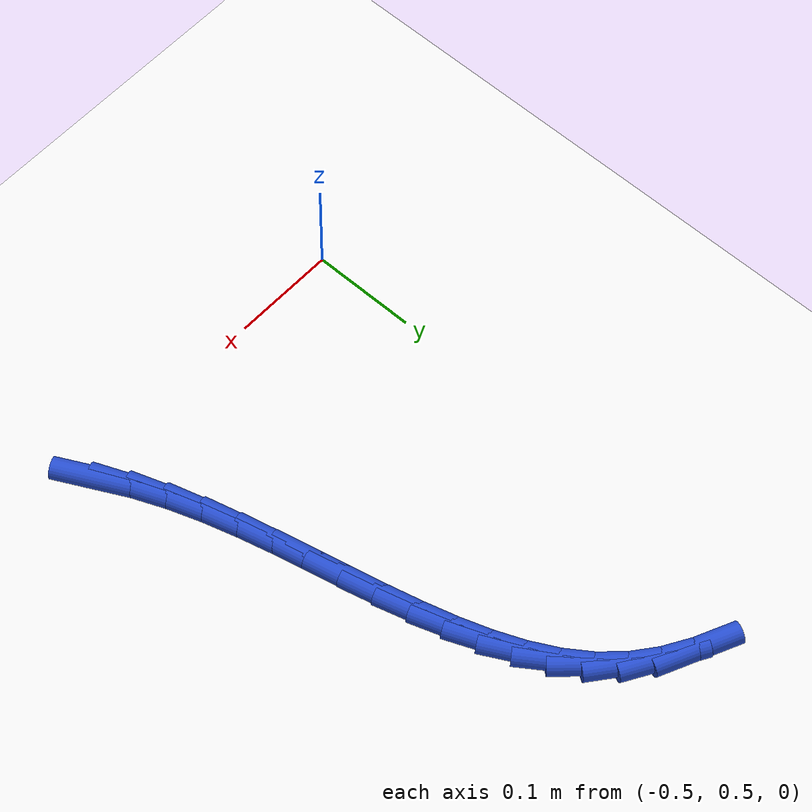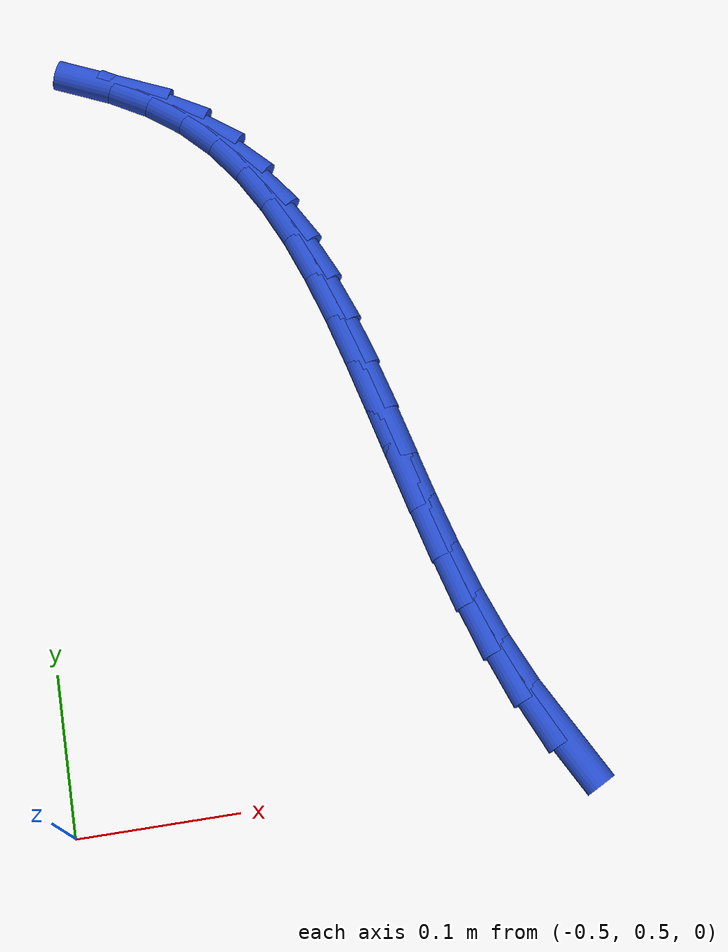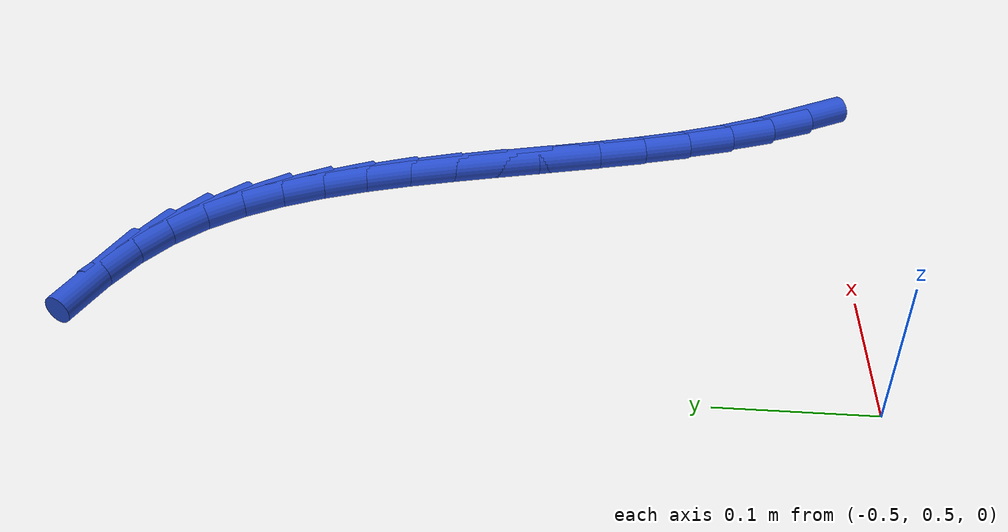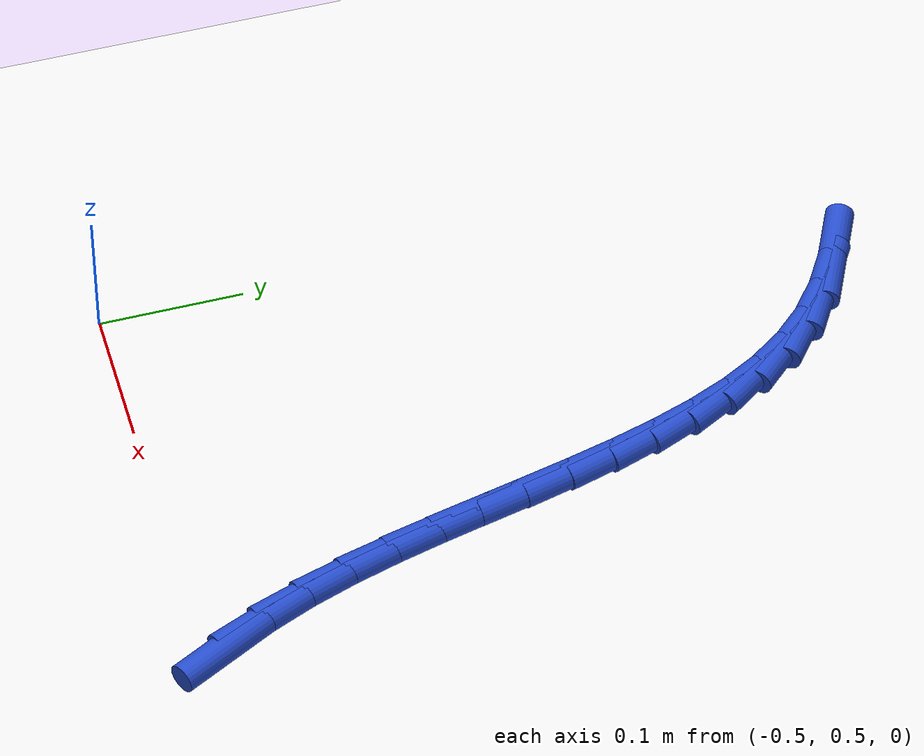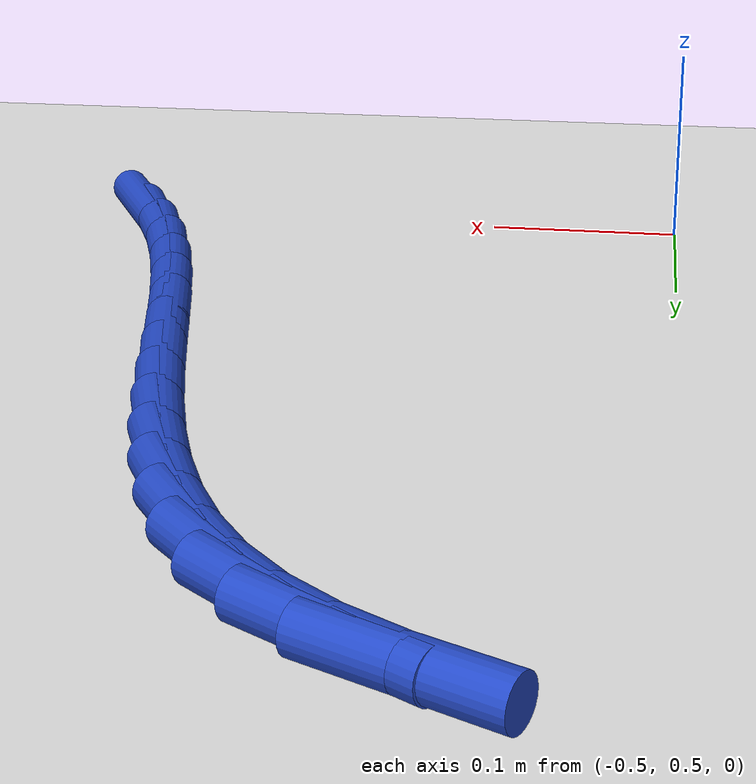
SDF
<sdf version="1.6">
 <world name="default">
  <model name="ground_plane">
   <static>1</static>
   <link name="link">
    <collision name="collision">
     <geometry><plane><normal>0 0 1</normal><size>100 100</size></plane></geometry>
     <surface><friction><ode><mu>100</mu><mu2>50</mu2></ode></friction></surface>
    </collision>
    <visual name="visual">
     <cast_shadows>0</cast_shadows>
     <geometry><plane><normal>0 0 1</normal><size>100 100</size></plane></geometry>
     <material>
      <script><uri>file://media/materials/scripts/gazebo.material</uri><name>Gazebo/WhiteGlow</name></script>
     </material>
    </visual>
   </link>
  </model>
  <model name="line">
   <link name="link_18">
    <pose>-0.20205330871393937 0.5170073352664414 0.01 0 1.57 -1.0904457805162286</pose>
    <collision name="collision">
     <geometry><cylinder><radius>0.01</radius><length>0.08</length></cylinder></geometry>
    </collision>
    <visual name="visual">
     <material>
      <script><name>Gazebo/Blue</name><uri>file://media/materials/scripts/gazebo.material</uri></script>
     </material>
     <geometry><cylinder><radius>0.01</radius><length>0.08</length></cylinder></geometry>
    </visual>
   </link>
   <link name="link_19">
    <pose>-0.21714222876289765 0.5459656546807882 0.01 0 1.57 -1.1689932220289792</pose>
    <collision name="collision">
     <geometry><cylinder><radius>0.01</radius><length>0.08</length></cylinder></geometry>
    </collision>
    <visual name="visual">
     <material>
      <script><name>Gazebo/Blue</name><uri>file://media/materials/scripts/gazebo.material</uri></script>
     </material>
     <geometry><cylinder><radius>0.01</radius><length>0.08</length></cylinder></geometry>
    </visual>
   </link>
   <link name="link_20">
    <pose>-0.23008048812826426 0.5764143308016453 0.01 0 1.57 -1.2340977902375778</pose>
    <collision name="collision">
     <geometry><cylinder><radius>0.01</radius><length>0.08</length></cylinder></geometry>
    </collision>
    <visual name="visual">
     <material>
      <script><name>Gazebo/Blue</name><uri>file://media/materials/scripts/gazebo.material</uri></script>
     </material>
     <geometry><cylinder><radius>0.01</radius><length>0.08</length></cylinder></geometry>
    </visual>
   </link>
   <link name="link_21">
    <pose>-0.24116558325167514 0.6080836222300486 0.01 0 1.57 -1.283526651803879</pose>
    <collision name="collision">
     <geometry><cylinder><radius>0.01</radius><length>0.08</length></cylinder></geometry>
    </collision>
    <visual name="visual">
     <material>
      <script><name>Gazebo/Blue</name><uri>file://media/materials/scripts/gazebo.material</uri></script>
     </material>
     <geometry><cylinder><radius>0.01</radius><length>0.08</length></cylinder></geometry>
    </visual>
   </link>
   <link name="link_22">
    <pose>-0.25078420423326886 0.6406403659619423 0.01 0 1.57 -1.3184104169941269</pose>
    <collision name="collision">
     <geometry><cylinder><radius>0.01</radius><length>0.08</length></cylinder></geometry>
    </collision>
    <visual name="visual">
     <material>
      <script><name>Gazebo/Blue</name><uri>file://media/materials/scripts/gazebo.material</uri></script>
     </material>
     <geometry><cylinder><radius>0.01</radius><length>0.08</length></cylinder></geometry>
    </visual>
   </link>
   <link name="link_23">
    <pose>-0.259323041173184 0.6737513989932696 0.01 0 1.57 -1.3396237344587576</pose>
    <collision name="collision">
     <geometry><cylinder><radius>0.01</radius><length>0.08</length></cylinder></geometry>
    </collision>
    <visual name="visual">
     <material>
      <script><name>Gazebo/Blue</name><uri>file://media/materials/scripts/gazebo.material</uri></script>
     </material>
     <geometry><cylinder><radius>0.01</radius><length>0.08</length></cylinder></geometry>
    </visual>
   </link>
   <link name="link_24">
    <pose>-0.2671687841715592 0.7070835583199749 0.01 0 1.57 -1.3476256977767074</pose>
    <collision name="collision">
     <geometry><cylinder><radius>0.01</radius><length>0.08</length></cylinder></geometry>
    </collision>
    <visual name="visual">
     <material>
      <script><name>Gazebo/Blue</name><uri>file://media/materials/scripts/gazebo.material</uri></script>
     </material>
     <geometry><cylinder><radius>0.01</radius><length>0.08</length></cylinder></geometry>
    </visual>
   </link>
   <link name="link_25">
    <pose>-0.27470812332853284 0.7403036809380015 0.01 0 1.57 -1.3423705962240982</pose>
    <collision name="collision">
     <geometry><cylinder><radius>0.01</radius><length>0.08</length></cylinder></geometry>
    </collision>
    <visual name="visual">
     <material>
      <script><name>Gazebo/Blue</name><uri>file://media/materials/scripts/gazebo.material</uri></script>
     </material>
     <geometry><cylinder><radius>0.01</radius><length>0.08</length></cylinder></geometry>
    </visual>
   </link>
   <link name="link_26">
    <pose>-0.28232774874424355 0.773078603843293 0.01 0 1.57 -1.3232466426435803</pose>
    <collision name="collision">
     <geometry><cylinder><radius>0.01</radius><length>0.08</length></cylinder></geometry>
    </collision>
    <visual name="visual">
     <material>
      <script><name>Gazebo/Blue</name><uri>file://media/materials/scripts/gazebo.material</uri></script>
     </material>
     <geometry><cylinder><radius>0.01</radius><length>0.08</length></cylinder></geometry>
    </visual>
   </link>
   <link name="link_27">
    <pose>-0.29041435051883 0.8050751640317938 0.01 0 1.57 -1.2890285368582663</pose>
    <collision name="collision">
     <geometry><cylinder><radius>0.01</radius><length>0.08</length></cylinder></geometry>
    </collision>
    <visual name="visual">
     <material>
      <script><name>Gazebo/Blue</name><uri>file://media/materials/scripts/gazebo.material</uri></script>
     </material>
     <geometry><cylinder><radius>0.01</radius><length>0.08</length></cylinder></geometry>
    </visual>
   </link>
   <link name="link_28">
    <pose>-0.29935461875243063 0.8359601984994469 0.01 0 1.57 -1.2378633953827356</pose>
    <collision name="collision">
     <geometry><cylinder><radius>0.01</radius><length>0.08</length></cylinder></geometry>
    </collision>
    <visual name="visual">
     <material>
      <script><name>Gazebo/Blue</name><uri>file://media/materials/scripts/gazebo.material</uri></script>
     </material>
     <geometry><cylinder><radius>0.01</radius><length>0.08</length></cylinder></geometry>
    </visual>
   </link>
   <link name="link_29">
    <pose>-0.309535243545184 0.8654005442421968 0.01 0 1.57 -1.1673617174606643</pose>
    <collision name="collision">
     <geometry><cylinder><radius>0.01</radius><length>0.08</length></cylinder></geometry>
    </collision>
    <visual name="visual">
     <material>
      <script><name>Gazebo/Blue</name><uri>file://media/materials/scripts/gazebo.material</uri></script>
     </material>
     <geometry><cylinder><radius>0.01</radius><length>0.08</length></cylinder></geometry>
    </visual>
   </link>
   <link name="link_30">
    <pose>-0.321342914997229 0.8930630382559871 0.01 0 1.57 -1.0749479529999244</pose>
    <collision name="collision">
     <geometry><cylinder><radius>0.01</radius><length>0.08</length></cylinder></geometry>
    </collision>
    <visual name="visual">
     <material>
      <script><name>Gazebo/Blue</name><uri>file://media/materials/scripts/gazebo.material</uri></script>
     </material>
     <geometry><cylinder><radius>0.01</radius><length>0.08</length></cylinder></geometry>
    </visual>
   </link>
   <link name="link_31">
    <pose>-0.3351643232087037 0.9186145175367612 0.01 0 1.57 -0.9587145743723529</pose>
    <collision name="collision">
     <geometry><cylinder><radius>0.01</radius><length>0.08</length></cylinder></geometry>
    </collision>
    <visual name="visual">
     <material>
      <script><name>Gazebo/Blue</name><uri>file://media/materials/scripts/gazebo.material</uri></script>
     </material>
     <geometry><cylinder><radius>0.01</radius><length>0.08</length></cylinder></geometry>
    </visual>
   </link>
   <link name="link_32">
    <pose>-0.35138615827974695 0.9417218190804629 0.01 0 1.57 -0.8189661553435489</pose>
    <collision name="collision">
     <geometry><cylinder><radius>0.01</radius><length>0.08</length></cylinder></geometry>
    </collision>
    <visual name="visual">
     <material>
      <script><name>Gazebo/Blue</name><uri>file://media/materials/scripts/gazebo.material</uri></script>
     </material>
     <geometry><cylinder><radius>0.01</radius><length>0.08</length></cylinder></geometry>
    </visual>
   </link>
   <link name="link_33">
    <pose>-0.37039510236368356 0.9620517876873002 0.01 0 1.57 -0.6672578157226929</pose>
    <collision name="collision">
     <geometry><cylinder><radius>0.01</radius><length>0.08</length></cylinder></geometry>
    </collision>
    <visual name="visual">
     <material>
      <script><name>Gazebo/Blue</name><uri>file://media/materials/scripts/gazebo.material</uri></script>
     </material>
     <geometry><cylinder><radius>0.01</radius><length>0.08</length></cylinder></geometry>
    </visual>
   </link>
   <link name="link_34">
    <pose>-0.3924331433485759 0.9794133668935624 0.01 0 1.57 -0.5353669460939533</pose>
    <collision name="collision">
     <geometry><cylinder><radius>0.01</radius><length>0.08</length></cylinder></geometry>
    </collision>
    <visual name="visual">
     <material>
      <script><name>Gazebo/Blue</name><uri>file://media/materials/scripts/gazebo.material</uri></script>
     </material>
     <geometry><cylinder><radius>0.01</radius><length>0.08</length></cylinder></geometry>
    </visual>
   </link>
   <link name="link_35">
    <pose>-0.41722808075413903 0.9941204650806784 0.01 0 1.57 -0.4306078056824694</pose>
    <collision name="collision">
     <geometry><cylinder><radius>0.01</radius><length>0.08</length></cylinder></geometry>
    </collision>
    <visual name="visual">
     <material>
      <script><name>Gazebo/Blue</name><uri>file://media/materials/scripts/gazebo.material</uri></script>
     </material>
     <geometry><cylinder><radius>0.01</radius><length>0.08</length></cylinder></geometry>
    </visual>
   </link>
  </model>
 </world>
</sdf>
